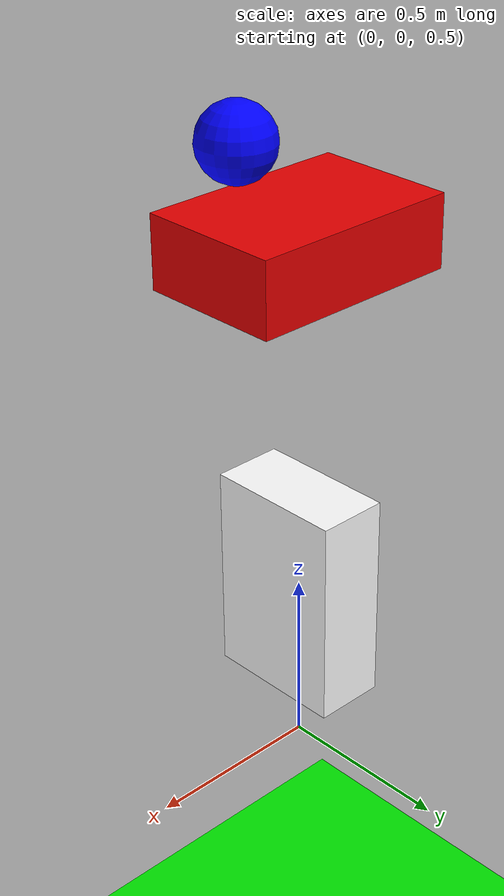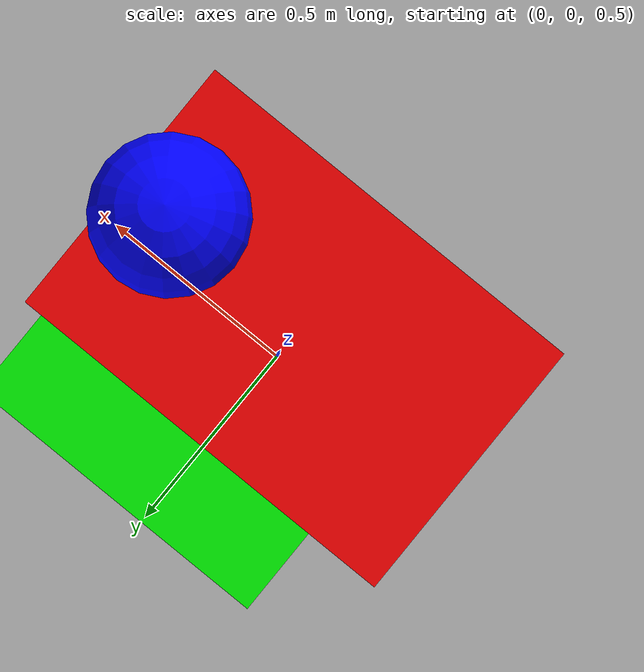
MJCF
<mujoco>
  <compiler angle="radian"/>
  <visual>
    <headlight ambient=".3 .3 .3" />
  </visual>
  <asset>
	<material name="white" rgba="1 1 1 1"/>
  </asset>
  <option gravity="0 0 -9.8">
  </option>

  <worldbody>
    <light diffuse=".3 .3 .3" pos="0 0 3" dir="0 0 -1"/>
    <geom type="plane" size="1 1 .1" rgba="0 .9 0 1"/>
	<body pos=".2 0 2.3">
      <joint type="free"/>
	  <inertial pos="0 0 0" mass="1" diaginertia=".01 .01 .01"/>
      <geom type="sphere" size=".1" rgba="0 0 1 1"/>
    </body>
	<body pos="0 0 2" euler="0 -1.57 0">
      <joint type="free"/>
	  <inertial pos="0 0 0" mass="1" diaginertia=".01 .01 .01"/>
      <geom type="box" size=".1 .2 .3" rgba=".9 0 0 1"/>
    </body>
    <body pos="0 0 1" euler="0 0 0">
      <joint type="free"/>
	  <inertial pos="0 0 0" mass="1" diaginertia=".01 .01 .01"/>
	  <geom type="box" size=".1 .2 .3" material="white"/>
    </body>

  </worldbody>
</mujoco>
